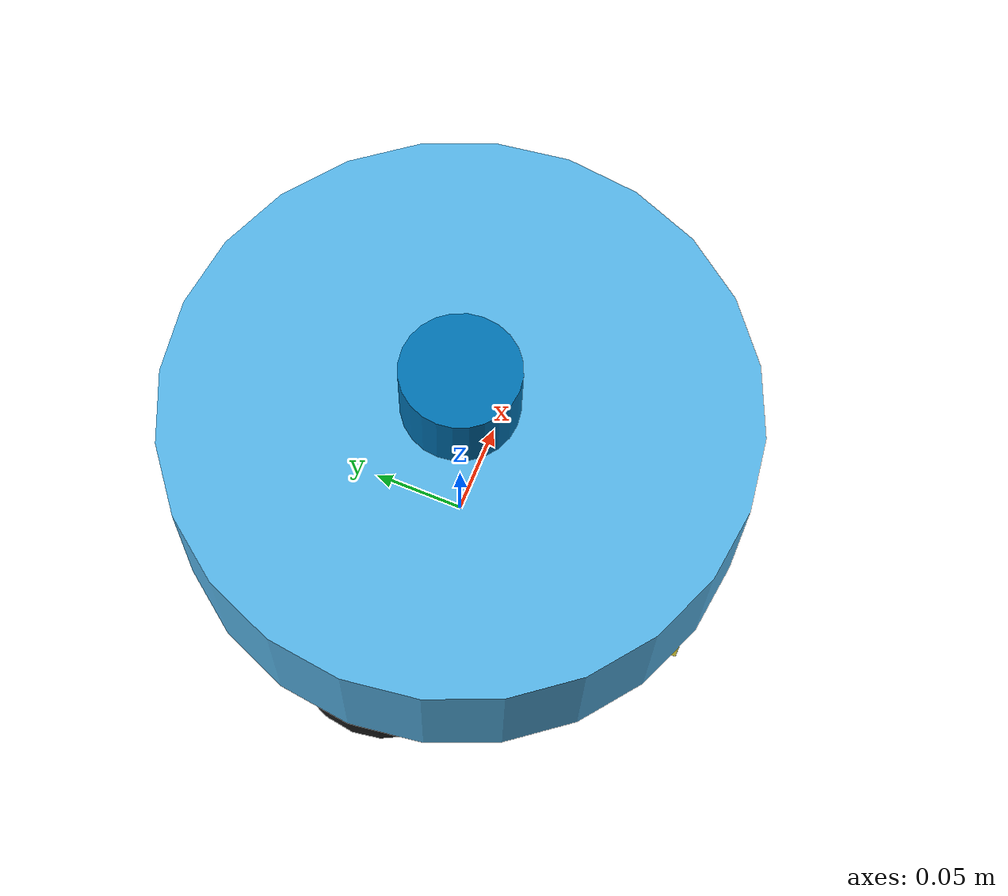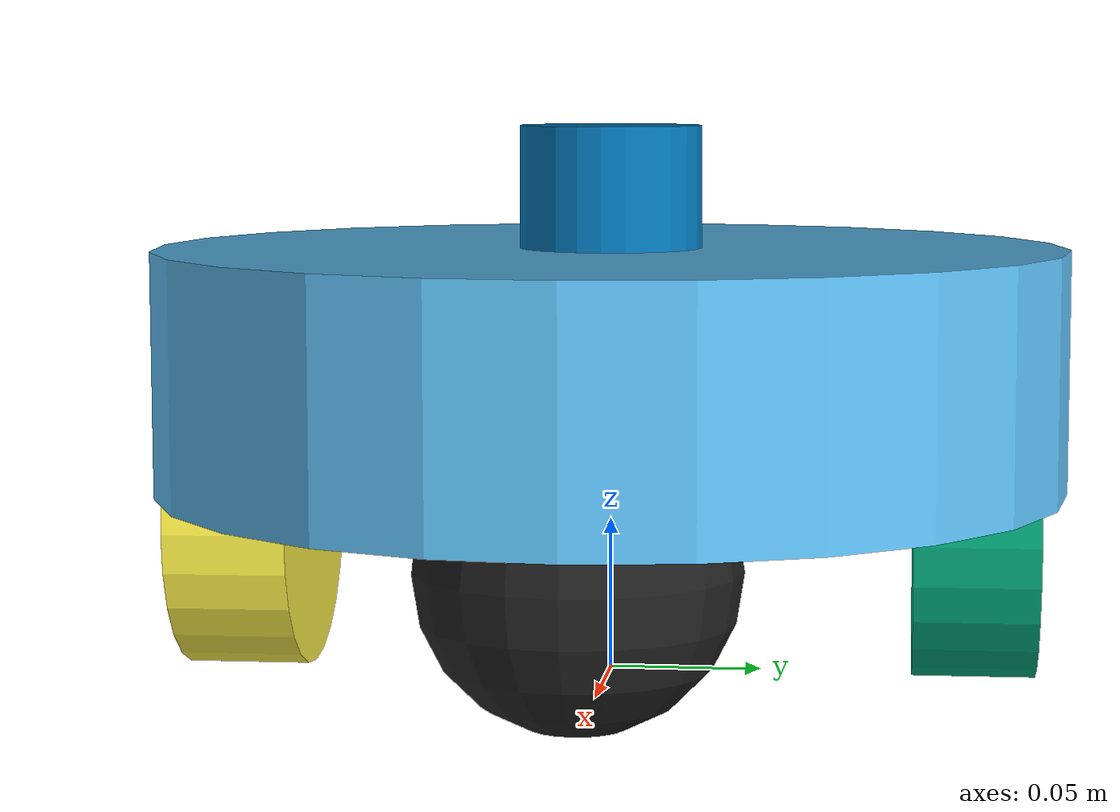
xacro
<?xml version="1.0"?>
<robot xmlns:xacro="http://www.ros.org/wiki/xacro" name="sweeper">

  <link name="base_footprint"/>
  <joint name="base_joint" type="fixed">
    <parent link="base_footprint"/><child link="base_link"/>
    <origin xyz="0 0 0.1" rpy="0 0 0"/>
  </joint>

  <link name="base_link">
    <visual><geometry><cylinder radius="0.15" length="0.08"/></geometry></visual>
    <collision><geometry><cylinder radius="0.15" length="0.08"/></geometry></collision>
    <inertial><mass value="2.0"/><inertia ixx="0.01" ixy="0" ixz="0" iyy="0.01" iyz="0" izz="0.02"/></inertial>
  </link>

  <link name="left_wheel">
    <visual><geometry><cylinder radius="0.05" length="0.04"/></geometry></visual>
    <collision><geometry><cylinder radius="0.05" length="0.04"/></geometry></collision>
    <inertial><mass value="0.5"/><inertia ixx="0.001" ixy="0" ixz="0" iyy="0.001" iyz="0" izz="0.001"/></inertial>
  </link>
  <joint name="left_wheel_joint" type="continuous">
    <parent link="base_link"/><child link="left_wheel"/>
    <origin xyz="0 0.12 -0.05" rpy="-1.5708 0 0"/><axis xyz="0 0 1"/>
  </joint>

  <link name="right_wheel">
    <visual><geometry><cylinder radius="0.05" length="0.04"/></geometry></visual>
    <collision><geometry><cylinder radius="0.05" length="0.04"/></geometry></collision>
    <inertial><mass value="0.5"/><inertia ixx="0.001" ixy="0" ixz="0" iyy="0.001" iyz="0" izz="0.001"/></inertial>
  </link>
  <joint name="right_wheel_joint" type="continuous">
    <parent link="base_link"/><child link="right_wheel"/>
    <origin xyz="0 -0.12 -0.05" rpy="-1.5708 0 0"/><axis xyz="0 0 1"/>
  </joint>

  <link name="laser_frame">
    <visual><geometry><cylinder radius="0.03" length="0.04"/></geometry></visual>
  </link>
  <joint name="laser_joint" type="fixed">
    <parent link="base_link"/><child link="laser_frame"/>
    <origin xyz="0 0 0.06" rpy="0 0 0"/>
  </joint>

    <link name="front_caster">
        <visual>
            <geometry><sphere radius="0.05"/></geometry>
            <material name="black"/>
        </visual>
        <collision>
            <geometry><sphere radius="0.05"/></geometry>
        </collision>
        <inertial>
            <mass value="0.1"/>
            <inertia ixx="0.0001" ixy="0" ixz="0" iyy="0.0001" iyz="0" izz="0.0001"/>
        </inertial>
    </link>

    <joint name="front_caster_joint" type="fixed">
        <parent link="base_link"/>
        <child link="front_caster"/>
        <origin xyz="0.1 0 -0.05" rpy="0 0 0"/>
    </joint>

    <gazebo reference="front_caster">
        <mu1 value="0.0"/>
        <mu2 value="0.0"/>
        <kp value="1000000.0"/>
        <kd value="10.0"/>
    </gazebo>

    <link name="back_caster">
        <visual>
            <geometry><sphere radius="0.05"/></geometry>
            <material name="black"/>
        </visual>
        <collision>
            <geometry><sphere radius="0.05"/></geometry>
        </collision>
        <inertial>
            <mass value="0.1"/>
            <inertia ixx="0.0001" ixy="0" ixz="0" iyy="0.0001" iyz="0" izz="0.0001"/>
        </inertial>
    </link>

    <joint name="back_caster_joint" type="fixed">
        <parent link="base_link"/>
        <child link="back_caster"/>
        <origin xyz="-0.1 0 -0.05" rpy="0 0 0"/>
    </joint>

    <gazebo reference="back_caster">
        <mu1 value="0.0"/>
        <mu2 value="0.0"/>
        <kp value="1000000.0"/>
        <kd value="10.0"/>
    </gazebo>

  <gazebo>
    <plugin name="diff_drive" filename="libgazebo_ros_diff_drive.so">
      <left_joint>left_wheel_joint</left_joint>
      <right_joint>right_wheel_joint</right_joint>
      <wheel_separation>0.24</wheel_separation>
      <wheel_diameter>0.1</wheel_diameter>
      <publish_odom>true</publish_odom>
      <publish_odom_tf>true</publish_odom_tf>
      <publish_wheel_tf>true</publish_wheel_tf>
      <odometry_frame>odom</odometry_frame>
      <robot_base_frame>base_footprint</robot_base_frame>
      <!-- 运行100ms后停止 避免机器人一直在运行 -->
      <command_timeout>0.1</command_timeout>
      <cmd_vel_timeout>0.1</cmd_vel_timeout>
    </plugin>
  </gazebo>

  <gazebo reference="laser_frame">
    <sensor name="lidar" type="ray">
      <always_on>true</always_on><visualize>true</visualize><update_rate>10</update_rate>
      <ray>
        <scan><horizontal><samples>360</samples><resolution>1</resolution><min_angle>-3.14</min_angle><max_angle>3.14</max_angle></horizontal></scan>
        <range><min>0.12</min><max>12.0</max></range>
      </ray>
      <plugin name="laser_controller" filename="libgazebo_ros_ray_sensor.so">
        <ros><remapping>~/out:=scan</remapping></ros>
        <output_type>sensor_msgs/LaserScan</output_type>
        <frame_name>laser_frame</frame_name>
      </plugin>
    </sensor>
  </gazebo>
</robot>
